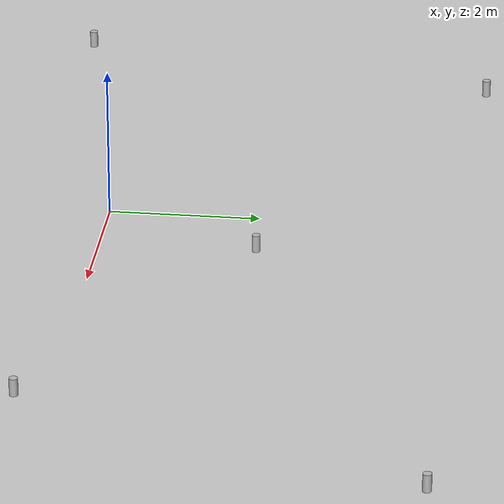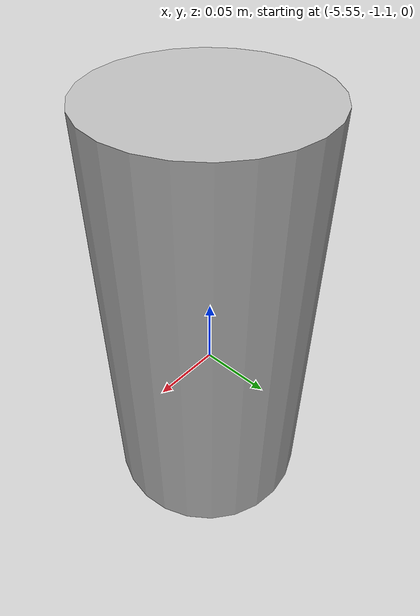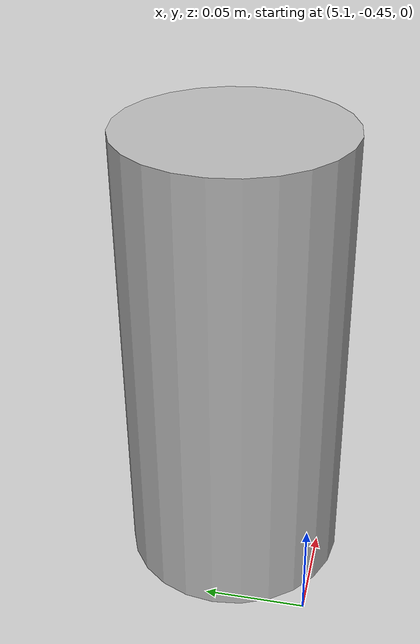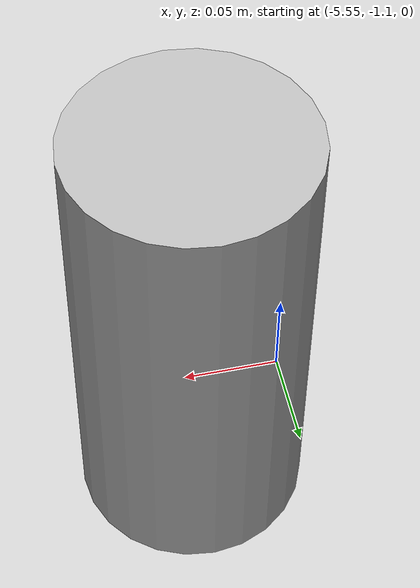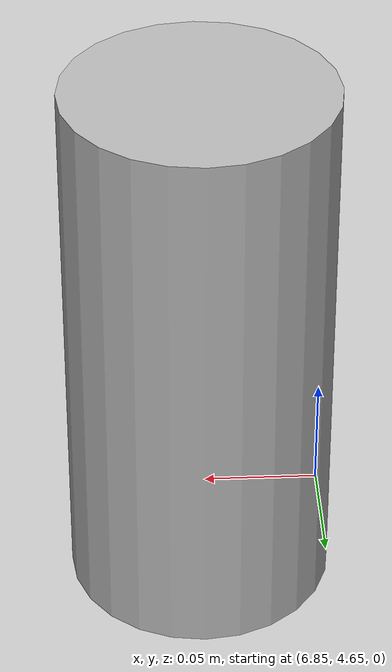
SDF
<sdf version="1.6">
 <world name="default">
  <include><uri>model://ground_plane</uri></include>
  <include><uri>model://sun</uri></include>
  <scene><shadows>false</shadows></scene>
  <physics type="ode">
   <real_time_update_rate>2000.0</real_time_update_rate>
   <max_step_size>0.001</max_step_size>
   <real_time_factor>1</real_time_factor>
   <ode>
    <solver>
     <type>quick</type>
     <iters>150</iters>
     <precon_iters>0</precon_iters>
     <sor>1.400000</sor>
     <use_dynamic_moi_rescaling>1</use_dynamic_moi_rescaling>
    </solver>
    <constraints>
     <cfm>0.00001</cfm>
     <erp>0.2</erp>
     <contact_max_correcting_vel>2000.000000</contact_max_correcting_vel>
     <contact_surface_layer>0.01000</contact_surface_layer>
    </constraints>
   </ode>
  </physics>
  <model name="beer_in_house"><static>1</static><include><uri>model://beer_in_house</uri></include></model>
 </world>
</sdf>

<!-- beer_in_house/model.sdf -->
<sdf version='1.7'>
  <model name='beer_in_house'>
    <model name='beer'>
      <link name='link'>
        <pose>0 0 0.115 0 -0 0</pose>
        <inertial>
          <mass>0.39</mass>
          <inertia>
            <ixx>0.00058</ixx>
            <ixy>0</ixy>
            <ixz>0</ixz>
            <iyy>0.00058</iyy>
            <iyz>0</iyz>
            <izz>0.00019</izz>
          </inertia>
        </inertial>
        <collision name='collision'>
          <geometry>
            <cylinder>
              <radius>0.055</radius>
              <length>0.23</length>
            </cylinder>
          </geometry>
        </collision>
        <visual name='visual'>
          <geometry>
            <cylinder>
              <radius>0.055</radius>
              <length>0.23</length>
            </cylinder>
          </geometry>
          <material>
            <script>
              <uri>model://beer/materials/scripts</uri>
              <uri>model://beer/materials/textures</uri>
              <name>Beer/Diffuse</name>
            </script>
          </material>
        </visual>
      </link>
      <pose>6.90467 4.69987 0 0 -0 0</pose>
    </model>
    <model name='beer_0'>
      <link name='link'>
        <pose>0 0 0.115 0 -0 0</pose>
        <inertial>
          <mass>0.39</mass>
          <inertia>
            <ixx>0.00058</ixx>
            <ixy>0</ixy>
            <ixz>0</ixz>
            <iyy>0.00058</iyy>
            <iyz>0</iyz>
            <izz>0.00019</izz>
          </inertia>
        </inertial>
        <collision name='collision'>
          <geometry>
            <cylinder>
              <radius>0.055</radius>
              <length>0.23</length>
            </cylinder>
          </geometry>
        </collision>
        <visual name='visual'>
          <geometry>
            <cylinder>
              <radius>0.055</radius>
              <length>0.23</length>
            </cylinder>
          </geometry>
          <material>
            <script>
              <uri>model://beer/materials/scripts</uri>
              <uri>model://beer/materials/textures</uri>
              <name>Beer/Diffuse</name>
            </script>
          </material>
        </visual>
      </link>
      <pose>0.952566 2.05679 0 0 -0 0</pose>
    </model>
    <model name='beer_1'>
      <link name='link'>
        <pose>0 0 0.115 0 -0 0</pose>
        <inertial>
          <mass>0.39</mass>
          <inertia>
            <ixx>0.00058</ixx>
            <ixy>0</ixy>
            <ixz>0</ixz>
            <iyy>0.00058</iyy>
            <iyz>0</iyz>
            <izz>0.00019</izz>
          </inertia>
        </inertial>
        <collision name='collision'>
          <geometry>
            <cylinder>
              <radius>0.055</radius>
              <length>0.23</length>
            </cylinder>
          </geometry>
        </collision>
        <visual name='visual'>
          <geometry>
            <cylinder>
              <radius>0.055</radius>
              <length>0.23</length>
            </cylinder>
          </geometry>
          <material>
            <script>
              <uri>model://beer/materials/scripts</uri>
              <uri>model://beer/materials/textures</uri>
              <name>Beer/Diffuse</name>
            </script>
          </material>
        </visual>
      </link>
      <pose>-4.33085 4.74365 0 0 -0 0</pose>
    </model>
    <model name='beer_2'>
      <link name='link'>
        <pose>0 0 0.115 0 -0 0</pose>
        <inertial>
          <mass>0.39</mass>
          <inertia>
            <ixx>0.00058</ixx>
            <ixy>0</ixy>
            <ixz>0</ixz>
            <iyy>0.00058</iyy>
            <iyz>0</iyz>
            <izz>0.00019</izz>
          </inertia>
        </inertial>
        <collision name='collision'>
          <geometry>
            <cylinder>
              <radius>0.055</radius>
              <length>0.23</length>
            </cylinder>
          </geometry>
        </collision>
        <visual name='visual'>
          <geometry>
            <cylinder>
              <radius>0.055</radius>
              <length>0.23</length>
            </cylinder>
          </geometry>
          <material>
            <script>
              <uri>model://beer/materials/scripts</uri>
              <uri>model://beer/materials/textures</uri>
              <name>Beer/Diffuse</name>
            </script>
          </material>
        </visual>
      </link>
      <pose>-5.4924 -1.04902 0 0 -0 0</pose>
    </model>
    <model name='beer_3'>
      <link name='link'>
        <pose>0 0 0.115 0 -0 0</pose>
        <inertial>
          <mass>0.39</mass>
          <inertia>
            <ixx>0.00058</ixx>
            <ixy>0</ixy>
            <ixz>0</ixz>
            <iyy>0.00058</iyy>
            <iyz>0</iyz>
            <izz>0.00019</izz>
          </inertia>
        </inertial>
        <collision name='collision'>
          <geometry>
            <cylinder>
              <radius>0.055</radius>
              <length>0.23</length>
            </cylinder>
          </geometry>
        </collision>
        <visual name='visual'>
          <geometry>
            <cylinder>
              <radius>0.055</radius>
              <length>0.23</length>
            </cylinder>
          </geometry>
          <material>
            <script>
              <uri>model://beer/materials/scripts</uri>
              <uri>model://beer/materials/textures</uri>
              <name>Beer/Diffuse</name>
            </script>
          </material>
        </visual>
      </link>
      <pose>5.14881 -0.404695 0 0 -0 0</pose>
    </model>
    <static>0</static>
    <allow_auto_disable>1</allow_auto_disable>
  </model>
</sdf>
